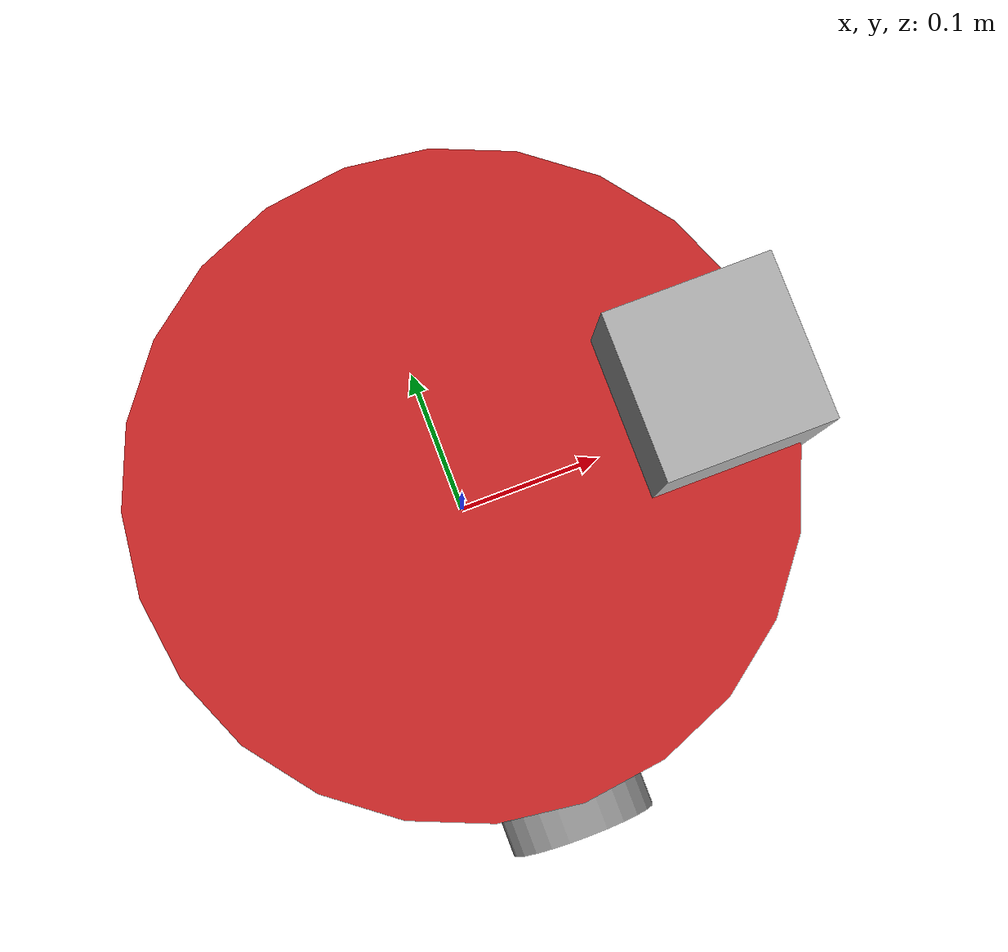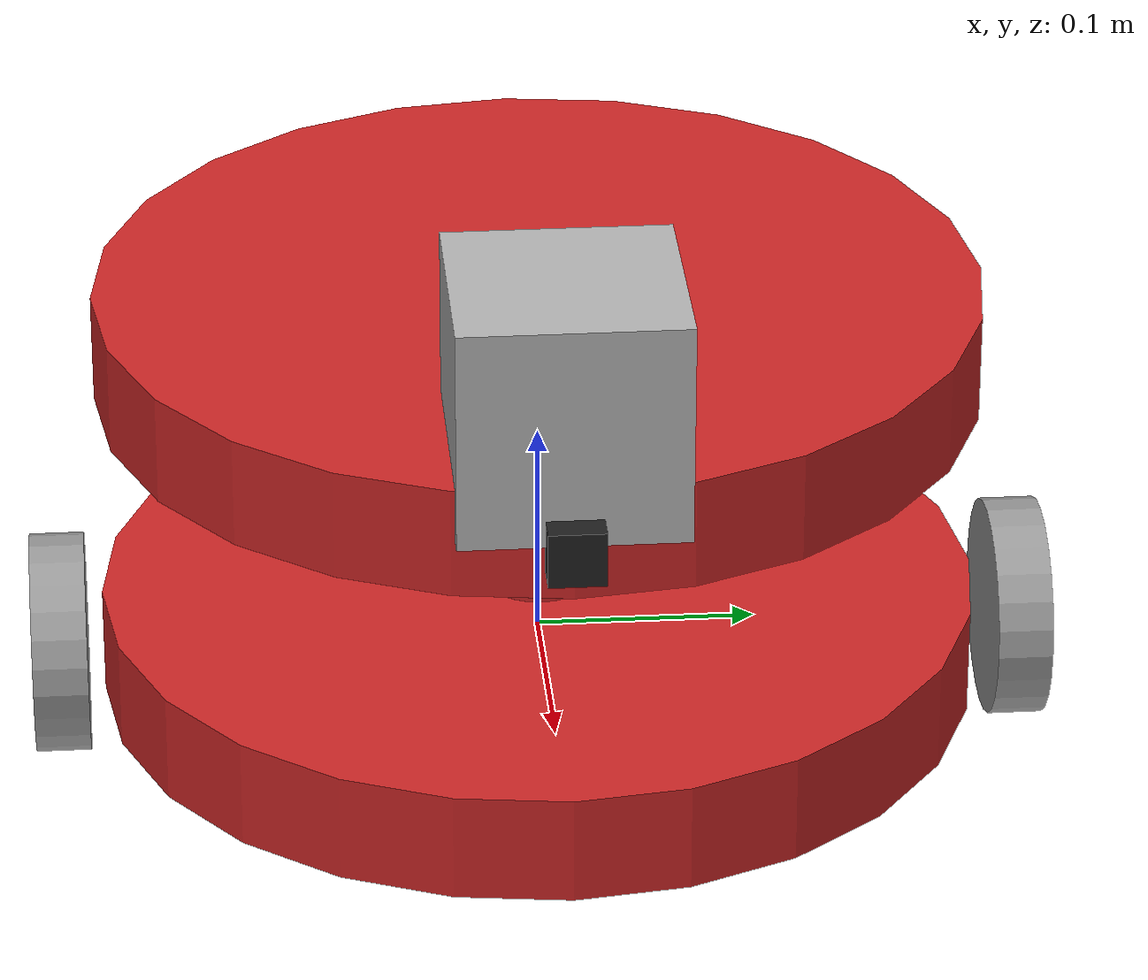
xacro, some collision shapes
<?xml version='1.0'?>

<robot name="my_robot" xmlns:xacro="http://www.ros.org/wiki/xacro">

  <xacro:include filename="$(find my_red_robot_mapping)/urdf/my_robot.gazebo" />

  <link name="robot_footprint"></link>

  <joint name="robot_footprint_joint" type="fixed">
    <origin xyz="0 0 0" rpy="0 0 0" />
    <parent link="robot_footprint"/>
    <child link="chassis" />
  </joint>

  <link name='chassis'>
    <pose>0 0 0.05 0 0 0</pose>

    <inertial>
      <mass value="1.0"/>
      <origin xyz="0.0 0 0" rpy=" 0 0 0"/>
      <inertia
          ixx="0.1" ixy="0" ixz="0"
          iyy="0.1" iyz="0"
          izz="0.1"
      />
    </inertial>

    <collision name='chassis_collision'>
      <origin xyz="0 0 0" rpy=" 0 0 0"/>
      <geometry>
        <cylinder radius="0.2" length="0.05"/>
      </geometry>
    </collision>

    <visual name='chassis_visual'>
      <origin xyz="0 0 0" rpy=" 0 0 0"/>
      <geometry>
        <cylinder radius="0.2" length="0.05"/>
      </geometry>
    </visual>

    <collision name='back_caster_collision'>
      <origin xyz="-0.15 0 -0.025" rpy=" 0 0 0"/>
      <geometry>
        <sphere radius="0.025"/>
      </geometry>
    </collision>

    <visual name='back_caster_visual'>
      <origin xyz="-0.15 0 -0.025" rpy=" 0 0 0"/>
      <geometry>
        <sphere radius="0.025"/>
      </geometry>
    </visual>

    <collision name='front_caster_collision'>
      <origin xyz="0.15 0 -0.025" rpy=" 0 0 0"/>
      <geometry>
        <sphere radius="0.025"/>
      </geometry>
    </collision>

    <visual name='front_caster_visual'>
      <origin xyz="0.15 0 -0.025" rpy=" 0 0 0"/>
      <geometry>
        <sphere radius="0.025"/>
      </geometry>
    </visual>

  </link>

  <link name='chassis_top'>
    <pose>0 0 0.05 0 0 0</pose>

    <inertial>
      <mass value="1.0"/>
      <origin xyz="0.0 0 0" rpy=" 0 0 0"/>
      <inertia
          ixx="0.1" ixy="0" ixz="0"
          iyy="0.1" iyz="0"
          izz="0.1"
      />
    </inertial>

    <collision name='chassis_top_collision'>
      <origin xyz="0 0 0" rpy=" 0 0 0"/>
      <geometry>
        <cylinder radius="0.2" length="0.05"/>
      </geometry>
    </collision>

    <visual name='chassis_top_visual'>
      <origin xyz="0 0 0" rpy=" 0 0 0"/>
      <geometry>
        <cylinder radius="0.2" length="0.05"/>
      </geometry>
    </visual>

    <collision name='chassis_top_center_bar_collision'>
      <origin xyz="0 0 -0.0625" rpy=" 0 0 0"/>
      <geometry>
        <cylinder radius="0.025" length="0.125"/>
      </geometry>
    </collision>

    <visual name='chassis_top_center_bar_visual'>
      <origin xyz="0 0 -0.0625" rpy=" 0 0 0"/>
      <geometry>
        <cylinder radius="0.025" length="0.125"/>
      </geometry>
    </visual>

  </link>

  <link name='left_wheel'>

    <inertial>
      <mass value="5.0"/>
      <origin xyz="0.0 0 0" rpy="0 1.5707 1.5707"/>
      <inertia
          ixx="0.1" ixy="0" ixz="0"
          iyy="0.1" iyz="0"
          izz="0.1"
      />
    </inertial>

    <collision name='left_wheel_collision'>
      <origin xyz="0 0 0" rpy="0 1.5707 1.5707"/>
      <geometry>
        <cylinder radius="0.05" length="0.025"/>
      </geometry>
    </collision>

    <visual name='left_wheel_visual'>
      <origin xyz="0 0 0" rpy="0 1.5707 1.5707"/>
      <geometry>
        <cylinder radius="0.05" length="0.025"/>
      </geometry>
    </visual>

  </link>

  <link name='right_wheel'>

    <inertial>
      <mass value="5.0"/>
      <origin xyz="0.0 0 0" rpy="0 1.5707 1.5707"/>
      <inertia
          ixx="0.1" ixy="0" ixz="0"
          iyy="0.1" iyz="0"
          izz="0.1"
      />
    </inertial>

    <collision name='right_wheel_collision'>
      <origin xyz="0 0 0" rpy="0 1.5707 1.5707"/>
      <geometry>
        <cylinder radius="0.05" length="0.025"/>
      </geometry>
    </collision>

    <visual name='right_wheel_visual'>
      <origin xyz="0 0 0" rpy=" 0 1.5707 1.5707"/>
      <geometry>
        <cylinder radius="0.05" length="0.025"/>
      </geometry>
    </visual>

  </link>

  <joint type="continuous" name="left_wheel_hinge">
    <origin xyz="0 0.22 0" rpy="0 0 0"/>
    <child link="left_wheel"/>
    <parent link="chassis"/>
    <axis xyz="0 1 0" rpy="0 0 0"/>
    <limit effort="10000" velocity="1000"/>
    <dynamics damping="1.0" friction="1.0"/>
  </joint>

  <joint type="continuous" name="right_wheel_hinge">
    <origin xyz="0 -0.22 0" rpy="0 0 0"/>
    <child link="right_wheel"/>
    <parent link="chassis"/>
    <axis xyz="0 1 0" rpy="0 0 0"/>
    <limit effort="10000" velocity="1000"/>
    <dynamics damping="1.0" friction="1.0"/>
  </joint>

  <joint type="fixed" name="chassis_top_joint">
    <origin xyz="0 0 0.15" rpy="0 0 0"/>
    <child link="chassis_top"/>
    <parent link="chassis"/>
  </joint>

  <link name='camera'>

    <inertial>
      <mass value="0.1"/>
      <origin xyz="0.0 0 0" rpy="0 0 0"/>
      <inertia
          ixx="1e-6" ixy="0" ixz="0"
          iyy="1e-6" iyz="0"
          izz="1e-6"
      />
    </inertial>

    <collision name='camera_collision'>
      <origin xyz="0 0 0" rpy="0 0 0"/>
      <geometry>
        <box size="0.025 0.025 0.025"/>
      </geometry>
    </collision>

    <visual name='camera_visual'>
      <origin xyz="0 0 0" rpy=" 0 0 0"/>
      <geometry>
        <box size="0.025 0.025 0.025"/>
      </geometry>
    </visual>

  </link>

  <joint type="fixed" name="camera_joint">
    <origin xyz="0.2 0 0" rpy="0 0 0"/>
    <child link="camera"/>
    <parent link="chassis_top"/>
  </joint>

  <joint name="camera_optical_joint" type="fixed">
    <origin xyz="0 0 0" rpy="-1.5707 0 -1.5707"/>
    <parent link="camera"/>
    <child link="camera_link_optical"/>
  </joint>

  <link name="camera_link_optical">
  </link>

  <link name='hokuyo'>

    <inertial>
      <mass value="0.1"/>
      <origin xyz="0.0 0 0" rpy="0 0 0"/>
      <inertia
          ixx="1e-6" ixy="0" ixz="0"
          iyy="1e-6" iyz="0"
          izz="1e-6"
      />
    </inertial>

    <collision name='hokuyo_collision'>
      <origin xyz="0 0 0" rpy="0 0 0"/>
      <geometry>
        <box size="0.1 0.1 0.1"/>
      </geometry>
    </collision>

    <visual name='hokuyo_visual'>
      <origin xyz="0 0 0" rpy=" 0 0 0"/>
      <geometry>
        <mesh filename = "package://my_red_robot_mapping/meshes/hokuyo.dae"/>
      </geometry>
    </visual>

  </link>

  <joint type="fixed" name="hokuyo_joint">
    <origin xyz="0.15 0 0.05" rpy="0 0 0"/>
    <child link="hokuyo"/>
    <parent link="chassis_top"/>
  </joint>

  <gazebo reference="left_wheel">
    <material>Gazebo/Grey</material>
  </gazebo>

  <gazebo reference="right_wheel">
    <material>Gazebo/Grey</material>
  </gazebo>

  <gazebo reference="chassis">
    <material>Gazebo/Red</material>
  </gazebo>

  <gazebo reference="chassis_top">
    <material>Gazebo/Red</material>
  </gazebo>

  <gazebo reference="camera">
    <material>Gazebo/Black</material>
  </gazebo>

</robot>
